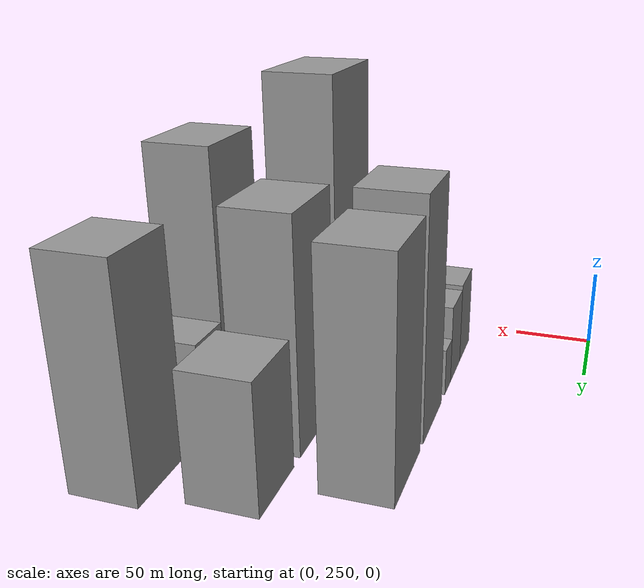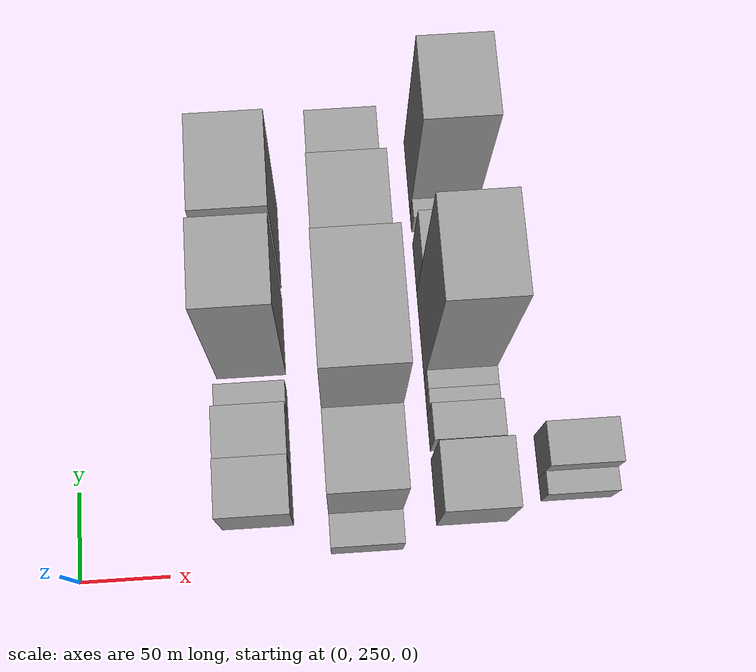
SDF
<sdf version="1.6">
 <world name="default">
  <model name="building_35">
   <static>1</static>
   <pose>100.0000 289.7004 0 0.000000 0.000000 0.000000</pose>
   <link name="link">
    <pose>0 0 27.00 0 0 0</pose>
    <collision name="collision"><geometry><box><size>40.0000 31.5812 54.0000</size></box></geometry></collision>
    <visual name="visual">
     <cast_shadows>0</cast_shadows>
     <geometry><box><size>40.0000 31.5812 54.0000</size></box></geometry>
     <material>
      <script>
       <uri>model://grey_wall/materials/scripts</uri>
       <uri>model://grey_wall/materials/textures</uri>
       <name>vrc/grey_wall</name>
      </script>
     </material>
    </visual>
   </link>
  </model>
  <model name="building_36">
   <static>1</static>
   <pose>100.0000 319.9541 0 0.000000 0.000000 0.000000</pose>
   <link name="link">
    <pose>0 0 25.50 0 0 0</pose>
    <collision name="collision"><geometry><box><size>40.0000 28.9261 51.0000</size></box></geometry></collision>
    <visual name="visual">
     <cast_shadows>0</cast_shadows>
     <geometry><box><size>40.0000 28.9261 51.0000</size></box></geometry>
     <material>
      <script>
       <uri>model://grey_wall/materials/scripts</uri>
       <uri>model://grey_wall/materials/textures</uri>
       <name>vrc/grey_wall</name>
      </script>
     </material>
    </visual>
   </link>
  </model>
  <model name="building_37">
   <static>1</static>
   <pose>100.0000 342.7423 0 0.000000 0.000000 0.000000</pose>
   <link name="link">
    <pose>0 0 15.00 0 0 0</pose>
    <collision name="collision"><geometry><box><size>40.0000 16.6505 30.0000</size></box></geometry></collision>
    <visual name="visual">
     <cast_shadows>0</cast_shadows>
     <geometry><box><size>40.0000 16.6505 30.0000</size></box></geometry>
     <material>
      <script>
       <uri>model://grey_wall/materials/scripts</uri>
       <uri>model://grey_wall/materials/textures</uri>
       <name>vrc/grey_wall</name>
      </script>
     </material>
    </visual>
   </link>
  </model>
  <model name="building_38">
   <static>1</static>
   <pose>100.0000 383.9623 0 0.000000 0.000000 0.000000</pose>
   <link name="link">
    <pose>0 0 72.00 0 0 0</pose>
    <collision name="collision"><geometry><box><size>40.0000 45.7894 144.0000</size></box></geometry></collision>
    <visual name="visual">
     <cast_shadows>0</cast_shadows>
     <geometry><box><size>40.0000 45.7894 144.0000</size></box></geometry>
     <material>
      <script>
       <uri>model://grey_wall/materials/scripts</uri>
       <uri>model://grey_wall/materials/textures</uri>
       <name>vrc/grey_wall</name>
      </script>
     </material>
    </visual>
   </link>
  </model>
  <model name="building_39">
   <static>1</static>
   <pose>100.0000 439.6447 0 0.000000 0.000000 0.000000</pose>
   <link name="link">
    <pose>0 0 67.50 0 0 0</pose>
    <collision name="collision"><geometry><box><size>40.0000 51.5755 135.0000</size></box></geometry></collision>
    <visual name="visual">
     <cast_shadows>0</cast_shadows>
     <geometry><box><size>40.0000 51.5755 135.0000</size></box></geometry>
     <material>
      <script>
       <uri>model://grey_wall/materials/scripts</uri>
       <uri>model://grey_wall/materials/textures</uri>
       <name>vrc/grey_wall</name>
      </script>
     </material>
    </visual>
   </link>
  </model>
  <model name="building_85">
   <static>1</static>
   <pose>160.0000 265.7608 0 0.000000 0.000000 0.000000</pose>
   <link name="link">
    <pose>0 0 18.00 0 0 0</pose>
    <collision name="collision"><geometry><box><size>40.0000 18.0533 36.0000</size></box></geometry></collision>
    <visual name="visual">
     <cast_shadows>0</cast_shadows>
     <geometry><box><size>40.0000 18.0533 36.0000</size></box></geometry>
     <material>
      <script>
       <uri>model://grey_wall/materials/scripts</uri>
       <uri>model://grey_wall/materials/textures</uri>
       <name>vrc/grey_wall</name>
      </script>
     </material>
    </visual>
   </link>
  </model>
  <model name="building_86">
   <static>1</static>
   <pose>160.0000 295.6009 0 0.000000 0.000000 0.000000</pose>
   <link name="link">
    <pose>0 0 57.00 0 0 0</pose>
    <collision name="collision"><geometry><box><size>40.0000 41.6268 114.0000</size></box></geometry></collision>
    <visual name="visual">
     <cast_shadows>0</cast_shadows>
     <geometry><box><size>40.0000 41.6268 114.0000</size></box></geometry>
     <material>
      <script>
       <uri>model://grey_wall/materials/scripts</uri>
       <uri>model://grey_wall/materials/textures</uri>
       <name>vrc/grey_wall</name>
      </script>
     </material>
    </visual>
   </link>
  </model>
  <model name="building_87">
   <static>1</static>
   <pose>160.0000 347.6384 0 0.000000 0.000000 0.000000</pose>
   <link name="link">
    <pose>0 0 97.50 0 0 0</pose>
    <collision name="collision"><geometry><box><size>40.0000 62.4483 195.0000</size></box></geometry></collision>
    <visual name="visual">
     <cast_shadows>0</cast_shadows>
     <geometry><box><size>40.0000 62.4483 195.0000</size></box></geometry>
     <material>
      <script>
       <uri>model://grey_wall/materials/scripts</uri>
       <uri>model://grey_wall/materials/textures</uri>
       <name>vrc/grey_wall</name>
      </script>
     </material>
    </visual>
   </link>
  </model>
  <model name="building_88">
   <static>1</static>
   <pose>160.0000 412.5115 0 0.000000 0.000000 0.000000</pose>
   <link name="link">
    <pose>0 0 69.00 0 0 0</pose>
    <collision name="collision"><geometry><box><size>40.0000 53.2978 138.0000</size></box></geometry></collision>
    <visual name="visual">
     <cast_shadows>0</cast_shadows>
     <geometry><box><size>40.0000 53.2978 138.0000</size></box></geometry>
     <material>
      <script>
       <uri>model://grey_wall/materials/scripts</uri>
       <uri>model://grey_wall/materials/textures</uri>
       <name>vrc/grey_wall</name>
      </script>
     </material>
    </visual>
   </link>
  </model>
  <model name="building_89">
   <static>1</static>
   <pose>160.0000 470.1729 0 0.000000 0.000000 0.000000</pose>
   <link name="link">
    <pose>0 0 37.50 0 0 0</pose>
    <collision name="collision"><geometry><box><size>40.0000 44.0251 75.0000</size></box></geometry></collision>
    <visual name="visual">
     <cast_shadows>0</cast_shadows>
     <geometry><box><size>40.0000 44.0251 75.0000</size></box></geometry>
     <material>
      <script>
       <uri>model://grey_wall/materials/scripts</uri>
       <uri>model://grey_wall/materials/textures</uri>
       <name>vrc/grey_wall</name>
      </script>
     </material>
    </visual>
   </link>
  </model>
  <model name="building_134">
   <static>1</static>
   <pose>220.0000 287.2563 0 0.000000 0.000000 0.000000</pose>
   <link name="link">
    <pose>0 0 31.50 0 0 0</pose>
    <collision name="collision"><geometry><box><size>40.0000 37.3966 63.0000</size></box></geometry></collision>
    <visual name="visual">
     <cast_shadows>0</cast_shadows>
     <geometry><box><size>40.0000 37.3966 63.0000</size></box></geometry>
     <material>
      <script>
       <uri>model://grey_wall/materials/scripts</uri>
       <uri>model://grey_wall/materials/textures</uri>
       <name>vrc/grey_wall</name>
      </script>
     </material>
    </visual>
   </link>
  </model>
  <model name="building_135">
   <static>1</static>
   <pose>220.0000 321.2504 0 0.000000 0.000000 0.000000</pose>
   <link name="link">
    <pose>0 0 18.00 0 0 0</pose>
    <collision name="collision"><geometry><box><size>40.0000 20.5917 36.0000</size></box></geometry></collision>
    <visual name="visual">
     <cast_shadows>0</cast_shadows>
     <geometry><box><size>40.0000 20.5917 36.0000</size></box></geometry>
     <material>
      <script>
       <uri>model://grey_wall/materials/scripts</uri>
       <uri>model://grey_wall/materials/textures</uri>
       <name>vrc/grey_wall</name>
      </script>
     </material>
    </visual>
   </link>
  </model>
  <model name="building_136">
   <static>1</static>
   <pose>220.0000 336.8539 0 0.000000 0.000000 0.000000</pose>
   <link name="link">
    <pose>0 0 12.00 0 0 0</pose>
    <collision name="collision"><geometry><box><size>40.0000 10.6153 24.0000</size></box></geometry></collision>
    <visual name="visual">
     <cast_shadows>0</cast_shadows>
     <geometry><box><size>40.0000 10.6153 24.0000</size></box></geometry>
     <material>
      <script>
       <uri>model://grey_wall/materials/scripts</uri>
       <uri>model://grey_wall/materials/textures</uri>
       <name>vrc/grey_wall</name>
      </script>
     </material>
    </visual>
   </link>
  </model>
  <model name="building_137">
   <static>1</static>
   <pose>220.0000 347.4968 0 0.000000 0.000000 0.000000</pose>
   <link name="link">
    <pose>0 0 12.00 0 0 0</pose>
    <collision name="collision"><geometry><box><size>40.0000 10.6705 24.0000</size></box></geometry></collision>
    <visual name="visual">
     <cast_shadows>0</cast_shadows>
     <geometry><box><size>40.0000 10.6705 24.0000</size></box></geometry>
     <material>
      <script>
       <uri>model://grey_wall/materials/scripts</uri>
       <uri>model://grey_wall/materials/textures</uri>
       <name>vrc/grey_wall</name>
      </script>
     </material>
    </visual>
   </link>
  </model>
  <model name="building_138">
   <static>1</static>
   <pose>220.0000 379.4700 0 0.000000 0.000000 0.000000</pose>
   <link name="link">
    <pose>0 0 79.50 0 0 0</pose>
    <collision name="collision"><geometry><box><size>40.0000 53.2759 159.0000</size></box></geometry></collision>
    <visual name="visual">
     <cast_shadows>0</cast_shadows>
     <geometry><box><size>40.0000 53.2759 159.0000</size></box></geometry>
     <material>
      <script>
       <uri>model://grey_wall/materials/scripts</uri>
       <uri>model://grey_wall/materials/textures</uri>
       <name>vrc/grey_wall</name>
      </script>
     </material>
    </visual>
   </link>
  </model>
  <model name="building_139">
   <static>1</static>
   <pose>220.0000 421.1445 0 0.000000 0.000000 0.000000</pose>
   <link name="link">
    <pose>0 0 28.50 0 0 0</pose>
    <collision name="collision"><geometry><box><size>40.0000 30.0731 57.0000</size></box></geometry></collision>
    <visual name="visual">
     <cast_shadows>0</cast_shadows>
     <geometry><box><size>40.0000 30.0731 57.0000</size></box></geometry>
     <material>
      <script>
       <uri>model://grey_wall/materials/scripts</uri>
       <uri>model://grey_wall/materials/textures</uri>
       <name>vrc/grey_wall</name>
      </script>
     </material>
    </visual>
   </link>
  </model>
  <model name="building_140">
   <static>1</static>
   <pose>220.0000 450.0571 0 0.000000 0.000000 0.000000</pose>
   <link name="link">
    <pose>0 0 12.00 0 0 0</pose>
    <collision name="collision"><geometry><box><size>40.0000 11.7522 24.0000</size></box></geometry></collision>
    <visual name="visual">
     <cast_shadows>0</cast_shadows>
     <geometry><box><size>40.0000 11.7522 24.0000</size></box></geometry>
     <material>
      <script>
       <uri>model://grey_wall/materials/scripts</uri>
       <uri>model://grey_wall/materials/textures</uri>
       <name>vrc/grey_wall</name>
      </script>
     </material>
    </visual>
   </link>
  </model>
  <model name="building_141">
   <static>1</static>
   <pose>220.0000 479.3016 0 0.000000 0.000000 0.000000</pose>
   <link name="link">
    <pose>0 0 66.00 0 0 0</pose>
    <collision name="collision"><geometry><box><size>40.0000 46.7369 132.0000</size></box></geometry></collision>
    <visual name="visual">
     <cast_shadows>0</cast_shadows>
     <geometry><box><size>40.0000 46.7369 132.0000</size></box></geometry>
     <material>
      <script>
       <uri>model://grey_wall/materials/scripts</uri>
       <uri>model://grey_wall/materials/textures</uri>
       <name>vrc/grey_wall</name>
      </script>
     </material>
    </visual>
   </link>
  </model>
  <model name="building_188">
   <static>1</static>
   <pose>280.0000 284.8291 0 0.000000 0.000000 0.000000</pose>
   <link name="link">
    <pose>0 0 13.50 0 0 0</pose>
    <collision name="collision"><geometry><box><size>40.0000 13.0049 27.0000</size></box></geometry></collision>
    <visual name="visual">
     <cast_shadows>0</cast_shadows>
     <geometry><box><size>40.0000 13.0049 27.0000</size></box></geometry>
     <material>
      <script>
       <uri>model://grey_wall/materials/scripts</uri>
       <uri>model://grey_wall/materials/textures</uri>
       <name>vrc/grey_wall</name>
      </script>
     </material>
    </visual>
   </link>
  </model>
  <model name="building_189">
   <static>1</static>
   <pose>280.0000 303.5102 0 0.000000 0.000000 0.000000</pose>
   <link name="link">
    <pose>0 0 22.50 0 0 0</pose>
    <collision name="collision"><geometry><box><size>40.0000 24.3573 45.0000</size></box></geometry></collision>
    <visual name="visual">
     <cast_shadows>0</cast_shadows>
     <geometry><box><size>40.0000 24.3573 45.0000</size></box></geometry>
     <material>
      <script>
       <uri>model://grey_wall/materials/scripts</uri>
       <uri>model://grey_wall/materials/textures</uri>
       <name>vrc/grey_wall</name>
      </script>
     </material>
    </visual>
   </link>
  </model>
 </world>
</sdf>
